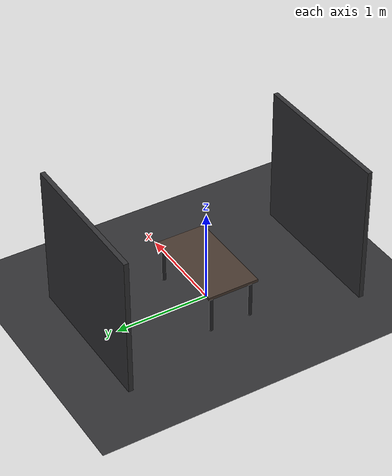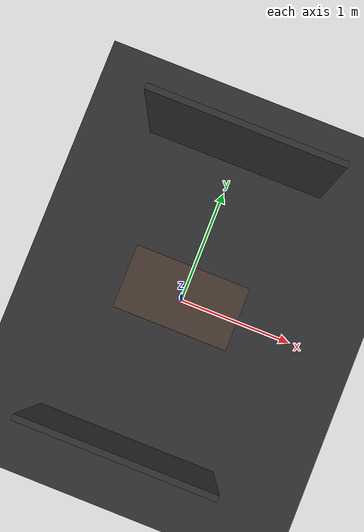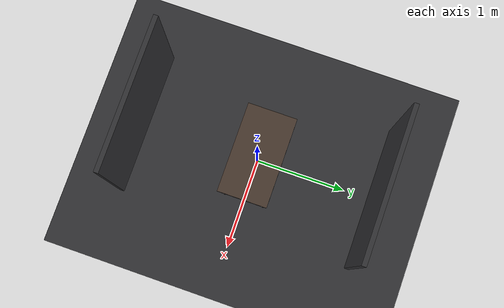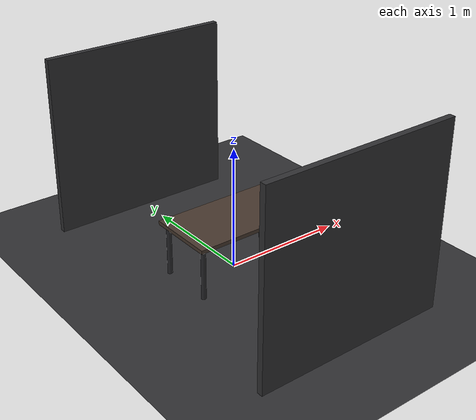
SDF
<sdf version="1.9">
 <world name="hand_world">
  <physics name="1ms" type="bullet-featherstone">
   <max_step_size>0.001</max_step_size>
   <real_time_factor>1.0</real_time_factor>
  </physics>
  <plugin filename="gz-sim-physics-system" name="gz::sim::systems::Physics">
   <engine><filename>gz-physics-bullet-featherstone-plugin</filename></engine>
  </plugin>
  <plugin filename="gz-sim-sensors-system" name="gz::sim::systems::Sensors"/>
  <plugin filename="gz-sim-scene-broadcaster-system" name="gz::sim::systems::SceneBroadcaster"/>
  <plugin filename="gz-sim-user-commands-system" name="gz::sim::systems::UserCommands"/>
  <light type="directional" name="sun">
   <pose>0 0 10 0 0 0</pose>
   <direction>-0.5 0.1 -0.9</direction>
   <diffuse>0.9 0.88 0.85 1</diffuse>
  </light>
  <light type="point" name="fill_light_left">
   <cast_shadows>false</cast_shadows>
   <pose>-0.6 0.6 1.1 0 0 0</pose>
   <diffuse>0.5 0.48 0.45 1</diffuse>
   <attenuation>
    <range>5</range>
    <constant>0.4</constant>
    <linear>0.3</linear>
    <quadratic>0.05</quadratic>
   </attenuation>
  </light>
  <light type="point" name="fill_light_right">
   <cast_shadows>false</cast_shadows>
   <pose>0.6 0.6 1.1 0 0 0</pose>
   <diffuse>0.5 0.48 0.45 1</diffuse>
   <attenuation>
    <range>5</range>
    <constant>0.4</constant>
    <linear>0.3</linear>
    <quadratic>0.05</quadratic>
   </attenuation>
  </light>
  <light type="point" name="fill_light_back_left">
   <cast_shadows>false</cast_shadows>
   <pose>-0.6 -0.6 1.1 0 0 0</pose>
   <diffuse>0.5 0.48 0.45 1</diffuse>
   <attenuation>
    <range>5</range>
    <constant>0.4</constant>
    <linear>0.3</linear>
    <quadratic>0.05</quadratic>
   </attenuation>
  </light>
  <light type="point" name="fill_light_back_right">
   <cast_shadows>false</cast_shadows>
   <pose>0.6 -0.6 1.1 0 0 0</pose>
   <diffuse>0.5 0.48 0.45 1</diffuse>
   <attenuation>
    <range>5</range>
    <constant>0.4</constant>
    <linear>0.3</linear>
    <quadratic>0.05</quadratic>
   </attenuation>
  </light>
  <model name="ground_plane">
   <static>true</static>
   <link name="link">
    <collision name="collision"><geometry><plane><normal>0 0 1</normal></plane></geometry></collision>
    <visual name="visual">
     <geometry><plane><normal>0 0 1</normal><size>100 100</size></plane></geometry>
     <material><ambient>0.16 0.16 0.17 1</ambient><diffuse>0.19 0.19 0.2 1</diffuse></material>
    </visual>
   </link>
  </model>
  <model name="workbench">
   <static>true</static>
   <link name="workbench_link">
    <collision name="top_collision">
     <pose>0 0 0.435 0 0 0</pose>
     <geometry><box><size>1.0 0.55 0.03</size></box></geometry>
    </collision>
    <visual name="top_visual">
     <pose>0 0 0.435 0 0 0</pose>
     <geometry><box><size>1.0 0.55 0.03</size></box></geometry>
     <material><ambient>0.22 0.18 0.15 1</ambient><diffuse>0.28 0.22 0.18 1</diffuse></material>
    </visual>
    <collision name="leg_fl_collision">
     <pose>-0.45 -0.22 0.21 0 0 0</pose>
     <geometry><cylinder><radius>0.02</radius><length>0.42</length></cylinder></geometry>
    </collision>
    <visual name="leg_fl_visual">
     <pose>-0.45 -0.22 0.21 0 0 0</pose>
     <geometry><cylinder><radius>0.02</radius><length>0.42</length></cylinder></geometry>
     <material><ambient>0.12 0.12 0.13 1</ambient><diffuse>0.15 0.15 0.16 1</diffuse></material>
    </visual>
    <collision name="leg_fr_collision">
     <pose>0.45 -0.22 0.21 0 0 0</pose>
     <geometry><cylinder><radius>0.02</radius><length>0.42</length></cylinder></geometry>
    </collision>
    <visual name="leg_fr_visual">
     <pose>0.45 -0.22 0.21 0 0 0</pose>
     <geometry><cylinder><radius>0.02</radius><length>0.42</length></cylinder></geometry>
     <material><ambient>0.12 0.12 0.13 1</ambient><diffuse>0.15 0.15 0.16 1</diffuse></material>
    </visual>
    <collision name="leg_bl_collision">
     <pose>-0.45 0.22 0.21 0 0 0</pose>
     <geometry><cylinder><radius>0.02</radius><length>0.42</length></cylinder></geometry>
    </collision>
    <visual name="leg_bl_visual">
     <pose>-0.45 0.22 0.21 0 0 0</pose>
     <geometry><cylinder><radius>0.02</radius><length>0.42</length></cylinder></geometry>
     <material><ambient>0.12 0.12 0.13 1</ambient><diffuse>0.15 0.15 0.16 1</diffuse></material>
    </visual>
    <collision name="leg_br_collision">
     <pose>0.45 0.22 0.21 0 0 0</pose>
     <geometry><cylinder><radius>0.02</radius><length>0.42</length></cylinder></geometry>
    </collision>
    <visual name="leg_br_visual">
     <pose>0.45 0.22 0.21 0 0 0</pose>
     <geometry><cylinder><radius>0.02</radius><length>0.42</length></cylinder></geometry>
     <material><ambient>0.12 0.12 0.13 1</ambient><diffuse>0.15 0.15 0.16 1</diffuse></material>
    </visual>
   </link>
  </model>
  <model name="backdrop_wall">
   <static>true</static>
   <link name="link">
    <pose>0 -1.3 0.75 0 0 0</pose>
    <collision name="collision"><geometry><box><size>1.6 0.05 1.5</size></box></geometry></collision>
    <visual name="visual">
     <geometry><box><size>1.6 0.05 1.5</size></box></geometry>
     <material><ambient>0.16 0.16 0.17 1</ambient><diffuse>0.19 0.19 0.2 1</diffuse></material>
    </visual>
   </link>
  </model>
  <model name="backdrop_wall_back">
   <static>true</static>
   <link name="link">
    <pose>0 1.3 0.75 0 0 0</pose>
    <collision name="collision"><geometry><box><size>1.6 0.05 1.5</size></box></geometry></collision>
    <visual name="visual">
     <geometry><box><size>1.6 0.05 1.5</size></box></geometry>
     <material><ambient>0.16 0.16 0.17 1</ambient><diffuse>0.19 0.19 0.2 1</diffuse></material>
    </visual>
   </link>
  </model>
  <model name="overview_camera">
   <static>true</static>
   <link name="link">
    <pose>0 0.85 0.78 0 0.12 -1.5708</pose>
    <sensor name="overview_camera_sensor" type="camera">
     <always_on>true</always_on>
     <update_rate>30</update_rate>
     <visualize>false</visualize>
     <topic>overview_camera/image</topic>
     <camera>
      <horizontal_fov>1.05</horizontal_fov>
      <image><width>640</width><height>480</height><format>R8G8B8</format></image>
      <clip><near>0.05</near><far>10</far></clip>
     </camera>
    </sensor>
   </link>
  </model>
  <model name="left_hand_camera">
   <static>true</static>
   <link name="link">
    <pose>-0.2 0.78 0.75 0 0.12 -1.5708</pose>
    <sensor name="left_hand_camera_sensor" type="camera">
     <always_on>true</always_on>
     <update_rate>30</update_rate>
     <visualize>false</visualize>
     <topic>left_hand_camera/image</topic>
     <camera>
      <horizontal_fov>1.05</horizontal_fov>
      <image><width>640</width><height>480</height><format>R8G8B8</format></image>
      <clip><near>0.05</near><far>10</far></clip>
     </camera>
    </sensor>
   </link>
  </model>
  <model name="right_hand_camera">
   <static>true</static>
   <link name="link">
    <pose>0.2 0.78 0.75 0 0.12 -1.5708</pose>
    <sensor name="right_hand_camera_sensor" type="camera">
     <always_on>true</always_on>
     <update_rate>30</update_rate>
     <visualize>false</visualize>
     <topic>right_hand_camera/image</topic>
     <camera>
      <horizontal_fov>1.05</horizontal_fov>
      <image><width>640</width><height>480</height><format>R8G8B8</format></image>
      <clip><near>0.05</near><far>10</far></clip>
     </camera>
    </sensor>
   </link>
  </model>
  <model name="back_overview_camera">
   <static>true</static>
   <link name="link">
    <pose>0 -0.85 0.78 0 0.12 1.5708</pose>
    <sensor name="back_overview_camera_sensor" type="camera">
     <always_on>true</always_on>
     <update_rate>30</update_rate>
     <visualize>false</visualize>
     <topic>back_overview_camera/image</topic>
     <camera>
      <horizontal_fov>1.05</horizontal_fov>
      <image><width>640</width><height>480</height><format>R8G8B8</format></image>
      <clip><near>0.05</near><far>10</far></clip>
     </camera>
    </sensor>
   </link>
  </model>
  <model name="back_left_hand_camera">
   <static>true</static>
   <link name="link">
    <pose>-0.2 -0.78 0.75 0 0.12 1.5708</pose>
    <sensor name="back_left_hand_camera_sensor" type="camera">
     <always_on>true</always_on>
     <update_rate>30</update_rate>
     <visualize>false</visualize>
     <topic>back_left_hand_camera/image</topic>
     <camera>
      <horizontal_fov>1.05</horizontal_fov>
      <image><width>640</width><height>480</height><format>R8G8B8</format></image>
      <clip><near>0.05</near><far>10</far></clip>
     </camera>
    </sensor>
   </link>
  </model>
  <model name="back_right_hand_camera">
   <static>true</static>
   <link name="link">
    <pose>0.2 -0.78 0.75 0 0.12 1.5708</pose>
    <sensor name="back_right_hand_camera_sensor" type="camera">
     <always_on>true</always_on>
     <update_rate>30</update_rate>
     <visualize>false</visualize>
     <topic>back_right_hand_camera/image</topic>
     <camera>
      <horizontal_fov>1.05</horizontal_fov>
      <image><width>640</width><height>480</height><format>R8G8B8</format></image>
      <clip><near>0.05</near><far>10</far></clip>
     </camera>
    </sensor>
   </link>
  </model>
 </world>
</sdf>
